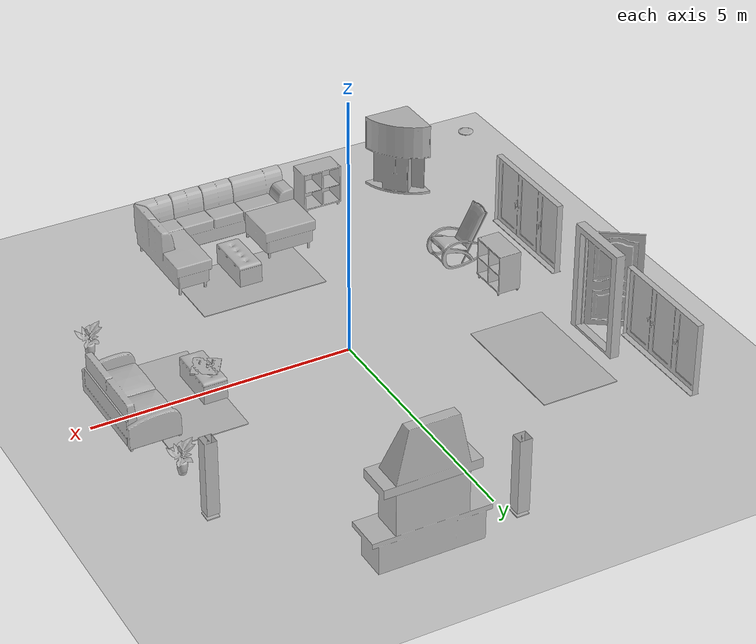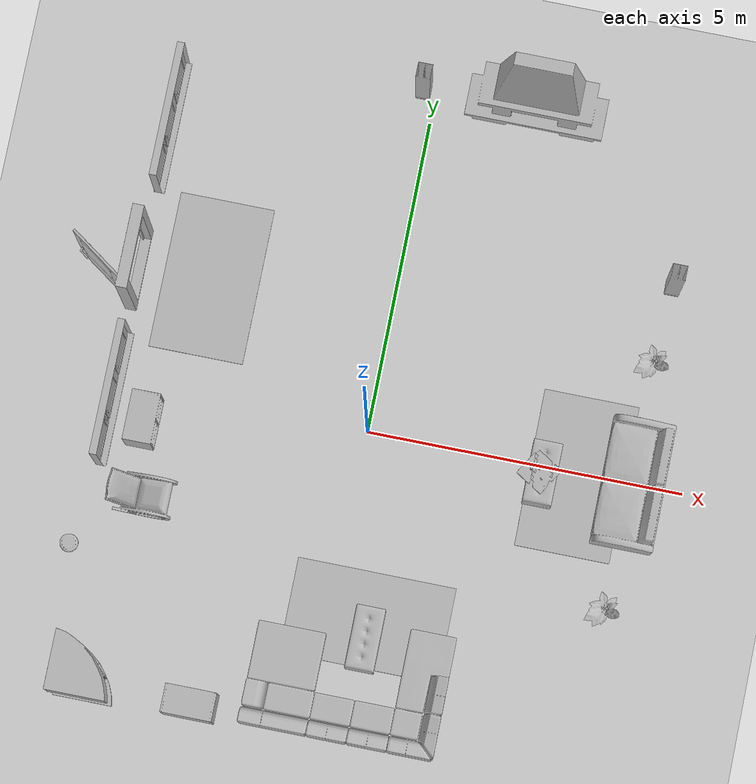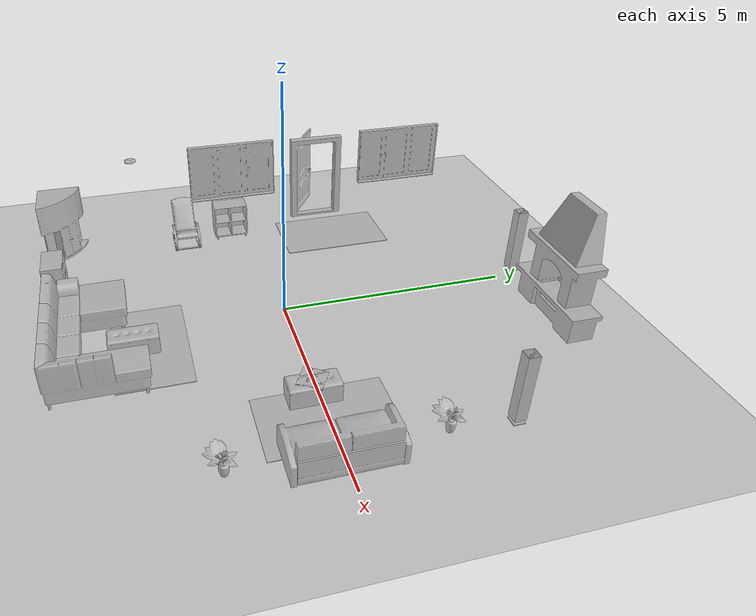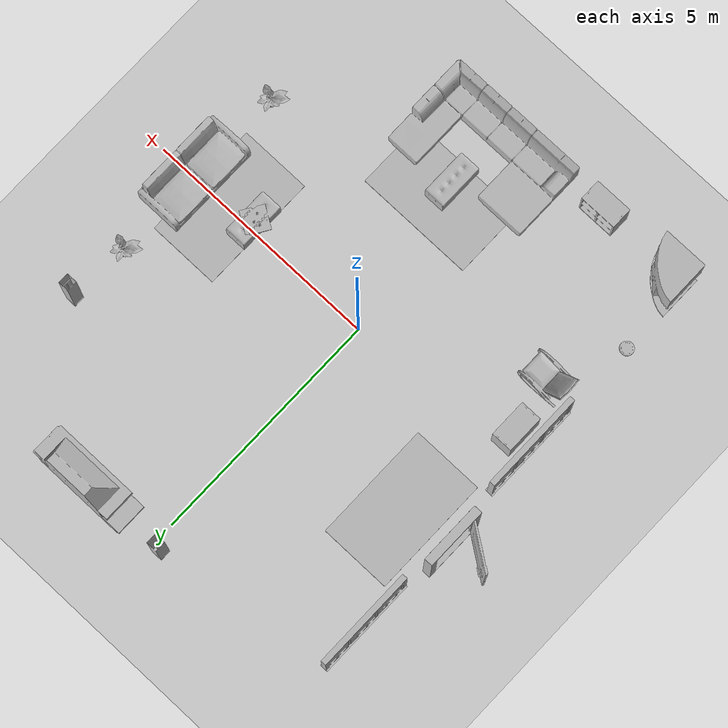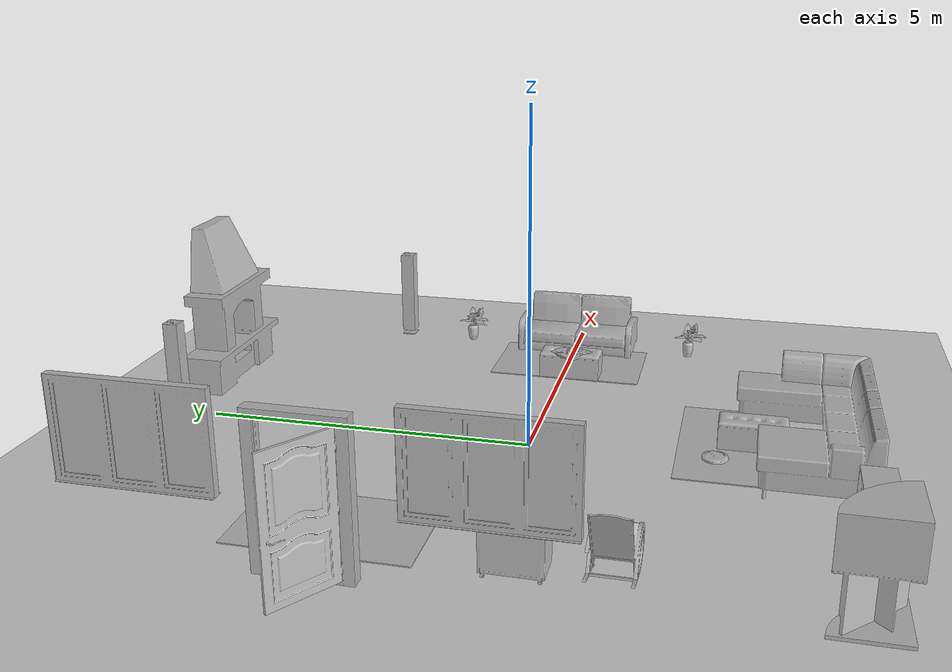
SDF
<sdf version="1.4">
 <world name="default">
  <light name="sun" type="directional">
   <pose>0 0 10 0 -0 0</pose>
   <diffuse>0.8 0.8 0.8 1</diffuse>
   <specular>0.2 0.2 0.2 1</specular>
   <attenuation>
    <range>1000</range>
    <constant>0.9</constant>
    <linear>0.01</linear>
    <quadratic>0.001</quadratic>
   </attenuation>
   <direction>-0.5 0.1 -0.9</direction>
  </light>
  <model name="ground_plane">
   <static>1</static>
   <link name="link">
    <collision name="collision">
     <geometry><plane><normal>0 0 1</normal><size>100 100</size></plane></geometry>
     <surface><friction><ode><mu>100</mu><mu2>50</mu2></ode></friction></surface>
    </collision>
    <visual name="visual">
     <cast_shadows>0</cast_shadows>
     <geometry><plane><normal>0 0 1</normal><size>100 100</size></plane></geometry>
     <material>
      <script><uri>file://media/materials/scripts/gazebo.material</uri><name>Gazebo/Grey</name></script>
     </material>
    </visual>
    <velocity_decay><linear>0</linear><angular>0</angular></velocity_decay>
   </link>
  </model>
  <physics type="ode">
   <max_step_size>0.001</max_step_size>
   <real_time_factor>1</real_time_factor>
   <real_time_update_rate>1000</real_time_update_rate>
   <gravity>0 0 -9.8</gravity>
  </physics>
  <scene><ambient>0.4 0.4 0.4 1</ambient><background>0.7 0.7 0.7 1</background><shadows>1</shadows></scene>
  <spherical_coordinates>
   <surface_model>EARTH_WGS84</surface_model>
   <latitude_deg>0</latitude_deg>
   <longitude_deg>0</longitude_deg>
   <elevation>0</elevation>
   <heading_deg>0</heading_deg>
  </spherical_coordinates>
  <model name="73_0">
   <pose>-4.02327 1.81667 0 0 0 -0.00114</pose>
   <static>1</static>
   <link name="link">
    <collision name="collision"><geometry><box><size>1.0004 1.30004 2</size></box></geometry></collision>
    <visual name="visual"><geometry><mesh><uri>model://73/73.dae</uri></mesh></geometry></visual>
    <velocity_decay><linear>0</linear><angular>0</angular></velocity_decay>
   </link>
  </model>
  <model name="210_0">
   <pose>-3.90361 -0.368166 0.83 0 0 -0.00114</pose>
   <static>1</static>
   <link name="link">
    <collision name="collision"><geometry><box><size>0.175 2.1 2</size></box></geometry></collision>
    <visual name="visual"><geometry><mesh><uri>model://210/210.dae</uri></mesh></geometry></visual>
    <velocity_decay><linear>0</linear><angular>0</angular></velocity_decay>
   </link>
  </model>
  <model name="210_1">
   <pose>-3.89865 3.9819 0.83 0 0 -0.00114</pose>
   <static>1</static>
   <link name="link">
    <collision name="collision"><geometry><box><size>0.175 2.1 2</size></box></geometry></collision>
    <visual name="visual"><geometry><mesh><uri>model://210/210.dae</uri></mesh></geometry></visual>
    <velocity_decay><linear>0</linear><angular>0</angular></velocity_decay>
   </link>
  </model>
  <model name="167_0">
   <pose>0.482404 -3.8942 0.03 0 -0 1.5708</pose>
   <static>1</static>
   <link name="link">
    <collision name="collision"><geometry><box><size>1.93296 3.03706 2</size></box></geometry></collision>
    <visual name="visual"><geometry><mesh><uri>model://167/167.dae</uri></mesh></geometry></visual>
    <velocity_decay><linear>0</linear><angular>0</angular></velocity_decay>
   </link>
  </model>
  <model name="350_0">
   <pose>4.20973 -0.030198 0.03 0 0 -3.14159</pose>
   <static>1</static>
   <link name="link">
    <collision name="collision"><geometry><box><size>0.98 2.02 2</size></box></geometry></collision>
    <visual name="visual"><geometry><mesh><uri>model://350/350.dae</uri></mesh></geometry></visual>
    <velocity_decay><linear>0</linear><angular>0</angular></velocity_decay>
   </link>
  </model>
  <model name="553_0">
   <pose>0.614405 -3.1982 0.03 0 0 -3.14159</pose>
   <static>1</static>
   <link name="link">
    <collision name="collision"><geometry><box><size>0.459612 1 2</size></box></geometry></collision>
    <visual name="visual"><geometry><mesh><uri>model://553/553.dae</uri></mesh></geometry></visual>
    <velocity_decay><linear>0</linear><angular>0</angular></velocity_decay>
   </link>
  </model>
  <model name="553_1">
   <pose>2.7984 -0.138199 0.03 0 -0 0</pose>
   <static>1</static>
   <link name="link">
    <collision name="collision"><geometry><box><size>0.459612 1 2</size></box></geometry></collision>
    <visual name="visual"><geometry><mesh><uri>model://553/553.dae</uri></mesh></geometry></visual>
    <velocity_decay><linear>0</linear><angular>0</angular></velocity_decay>
   </link>
  </model>
  <model name="196_0">
   <pose>-3.21359 -1.6862 0.03 0 -0 0</pose>
   <static>1</static>
   <link name="link">
    <collision name="collision"><geometry><box><size>0.999507 0.6 2</size></box></geometry></collision>
    <visual name="visual"><geometry><mesh><uri>model://196/196.dae</uri></mesh></geometry></visual>
    <velocity_decay><linear>0</linear><angular>0</angular></velocity_decay>
   </link>
  </model>
  <model name="238_0">
   <pose>3.3384 -0.042197 0.03 0 -0 0</pose>
   <static>1</static>
   <link name="link">
    <collision name="collision"><geometry><box><size>1.5 2.5 0</size></box></geometry></collision>
    <visual name="visual"><geometry><mesh><uri>model://238/238.dae</uri></mesh></geometry></visual>
    <velocity_decay><linear>0</linear><angular>0</angular></velocity_decay>
   </link>
  </model>
  <model name="238_1">
   <pose>0.590404 -2.8862 0.03 0 0 -1.5708</pose>
   <static>1</static>
   <link name="link">
    <collision name="collision"><geometry><box><size>1.5 2.5 0</size></box></geometry></collision>
    <visual name="visual"><geometry><mesh><uri>model://238/238.dae</uri></mesh></geometry></visual>
    <velocity_decay><linear>0</linear><angular>0</angular></velocity_decay>
   </link>
  </model>
  <model name="238_2">
   <pose>-2.87759 1.9018 0.03 0 -0 0</pose>
   <static>1</static>
   <link name="link">
    <collision name="collision"><geometry><box><size>1.5 2.5 0</size></box></geometry></collision>
    <visual name="visual"><geometry><mesh><uri>model://238/238.dae</uri></mesh></geometry></visual>
    <velocity_decay><linear>0</linear><angular>0</angular></velocity_decay>
   </link>
  </model>
  <model name="136_0">
   <pose>-3.4916 -4.5062 0.03 0 -0 0</pose>
   <static>1</static>
   <link name="link">
    <collision name="collision"><geometry><box><size>0.939655 0.939739 2</size></box></geometry></collision>
    <visual name="visual"><geometry><mesh><uri>model://136/136.dae</uri></mesh></geometry></visual>
    <velocity_decay><linear>0</linear><angular>0</angular></velocity_decay>
   </link>
  </model>
  <model name="242_0">
   <pose>1.60028 5.46137 0.03 0 0 -1.5708</pose>
   <static>1</static>
   <link name="link">
    <collision name="collision"><geometry><box><size>0.66 2.18 2</size></box></geometry></collision>
    <visual name="visual"><geometry><mesh><uri>model://242/242.dae</uri></mesh></geometry></visual>
    <velocity_decay><linear>0</linear><angular>0</angular></velocity_decay>
   </link>
  </model>
  <model name="340_0">
   <pose>2.7444 -0.138199 0.44 0 0 -0.555468</pose>
   <static>1</static>
   <link name="link">
    <collision name="collision"><geometry><box><size>0.5 0.5 2</size></box></geometry></collision>
    <visual name="visual"><geometry><mesh><uri>model://340/340.dae</uri></mesh></geometry></visual>
    <velocity_decay><linear>0</linear><angular>0</angular></velocity_decay>
   </link>
  </model>
  <model name="513_0">
   <pose>-1.82105 -4.71498 0.03 0 -0 1.5708</pose>
   <static>1</static>
   <link name="link">
    <collision name="collision"><geometry><box><size>0.449988 0.799842 2</size></box></geometry></collision>
    <visual name="visual"><geometry><mesh><uri>model://513/513.dae</uri></mesh></geometry></visual>
    <velocity_decay><linear>0</linear><angular>0</angular></velocity_decay>
   </link>
  </model>
  <model name="513_1">
   <pose>-3.42905 -0.554824 0.03 0 -0 0</pose>
   <static>1</static>
   <link name="link">
    <collision name="collision"><geometry><box><size>0.449988 0.799842 2</size></box></geometry></collision>
    <visual name="visual"><geometry><mesh><uri>model://513/513.dae</uri></mesh></geometry></visual>
    <velocity_decay><linear>0</linear><angular>0</angular></velocity_decay>
   </link>
  </model>
  <model name="130_0">
   <pose>4.16695 1.92918 0.03 0 -0 0</pose>
   <static>1</static>
   <link name="link">
    <collision name="collision"><geometry><box><size>0.51716 0.566834 2</size></box></geometry></collision>
    <visual name="visual"><geometry><mesh><uri>model://130/130.dae</uri></mesh></geometry></visual>
    <velocity_decay><linear>0</linear><angular>0</angular></velocity_decay>
   </link>
  </model>
  <model name="130_1">
   <pose>4.14295 -2.00682 0.03 0 -0 0</pose>
   <static>1</static>
   <link name="link">
    <collision name="collision"><geometry><box><size>0.51716 0.566834 2</size></box></geometry></collision>
    <visual name="visual"><geometry><mesh><uri>model://130/130.dae</uri></mesh></geometry></visual>
    <velocity_decay><linear>0</linear><angular>0</angular></velocity_decay>
   </link>
  </model>
  <model name="517_0">
   <pose>4.23895 3.16518 0.03 0 -0 0</pose>
   <static>1</static>
   <link name="link">
    <collision name="collision"><geometry><box><size>0.23 0.23 2</size></box></geometry></collision>
    <visual name="visual"><geometry><mesh><uri>model://517/517.dae</uri></mesh></geometry></visual>
    <velocity_decay><linear>0</linear><angular>0</angular></velocity_decay>
   </link>
  </model>
  <model name="517_1">
   <pose>-0.201051 5.4852 0.03 0 -0 0</pose>
   <static>1</static>
   <link name="link">
    <collision name="collision"><geometry><box><size>0.23 0.23 2</size></box></geometry></collision>
    <visual name="visual"><geometry><mesh><uri>model://517/517.dae</uri></mesh></geometry></visual>
    <velocity_decay><linear>0</linear><angular>0</angular></velocity_decay>
   </link>
  </model>
  <model name="313_0">
   <pose>-3.98735 -2.91882 2.03 0 -0 0</pose>
   <static>1</static>
   <link name="link">
    <collision name="collision"><geometry><box><size>0.028 0.28 0</size></box></geometry></collision>
    <visual name="visual"><geometry><mesh><uri>model://313/313.dae</uri></mesh></geometry></visual>
    <velocity_decay><linear>0</linear><angular>0</angular></velocity_decay>
   </link>
  </model>
 </world>
</sdf>
